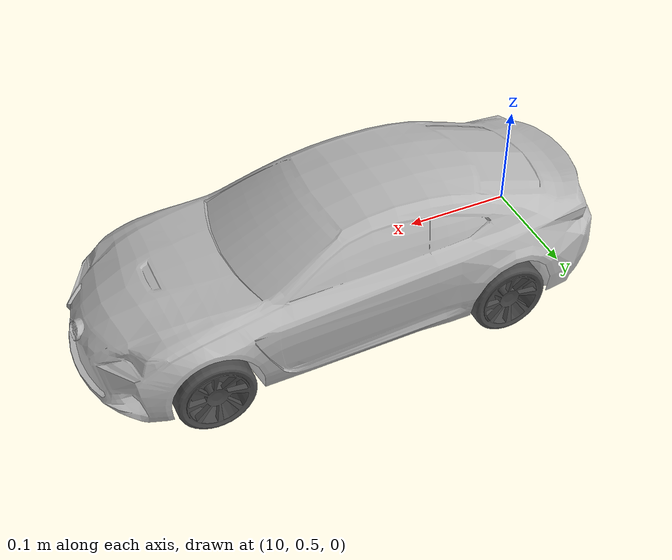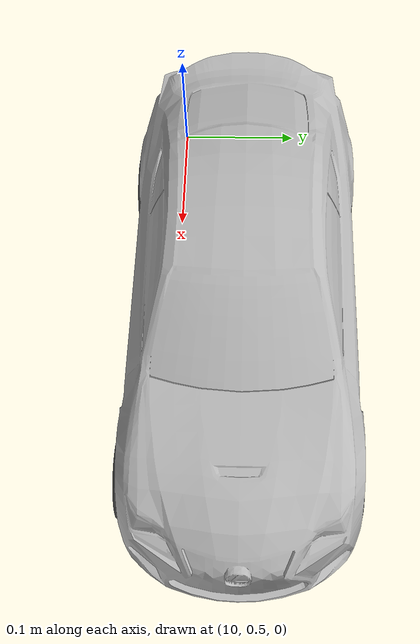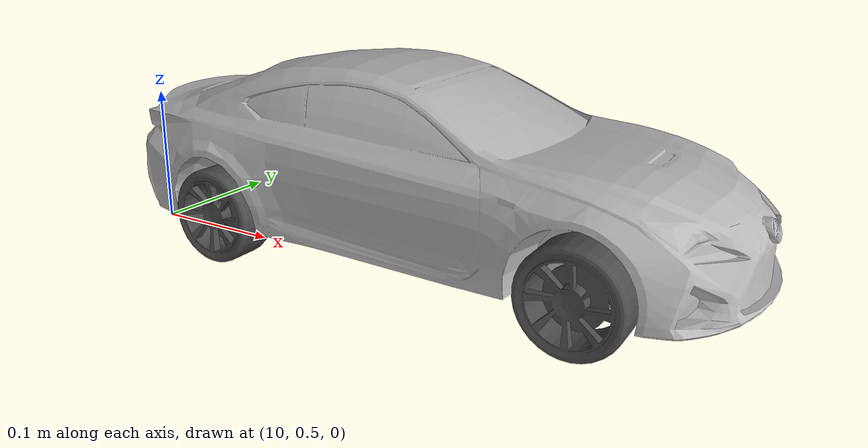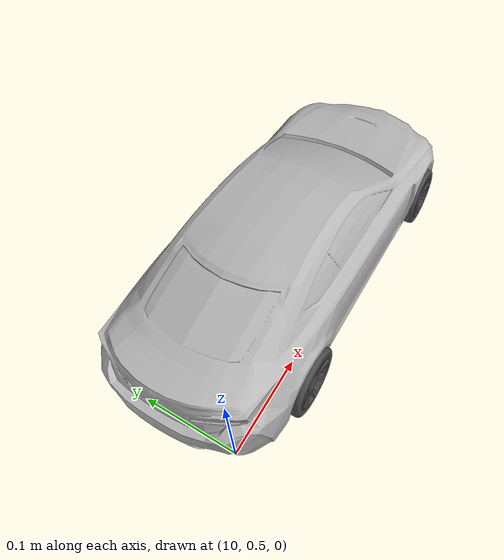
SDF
<sdf version="1.7">
 <world name="bfmc_official">
  <model name="automobile_obstacle_1">
   <static>1</static>
   <frame name="chassis::__model__" attached_to="chassis::link">
    <pose relative_to="__model__">0 0 0 0 -0 0</pose>
   </frame>
   <link name="chassis::link">
    <inertial>
     <mass>0.26244</mass>
     <inertia>
      <ixx>0.00283444</ixx>
      <ixy>0</ixy>
      <ixz>0</ixz>
      <iyy>0.00039867</iyy>
      <iyz>0</iyz>
      <izz>0.00323293</izz>
     </inertia>
    </inertial>
    <pose relative_to="chassis::__model__">0 0 0 0 -0 0</pose>
    <visual name="visual">
     <pose>0 0 -0.0065 0 -0 0</pose>
     <geometry><mesh><uri>model://chassis/meshes/chassisV5.dae</uri><scale>1 1 1</scale></mesh></geometry>
     <material>
      <lighting>1</lighting>
      <shader type="vertex"><normal_map>__default__</normal_map></shader>
      <ambient>0.6 0.6 0.6 1</ambient>
      <diffuse>0.85 0.85 0.85 1</diffuse>
      <specular>0.6 0.6 0.6 1</specular>
      <emissive>0 0 0 1</emissive>
     </material>
    </visual>
    <collision name="collision">
     <geometry><box><size>0.135 0.36 0.002</size></box></geometry>
     <surface>
      <friction>
       <ode><mu>1</mu><mu2>1</mu2><fdir1>0 0 0</fdir1><slip1>0</slip1><slip2>0</slip2></ode>
       <torsional>
        <coefficient>1</coefficient>
        <patch_radius>0</patch_radius>
        <surface_radius>0</surface_radius>
        <use_patch_radius>1</use_patch_radius>
        <ode><slip>0</slip></ode>
       </torsional>
      </friction>
      <bounce><restitution_coefficient>0</restitution_coefficient><threshold>1e+06</threshold></bounce>
      <contact>
       <collide_without_contact>0</collide_without_contact>
       <collide_without_contact_bitmask>1</collide_without_contact_bitmask>
       <collide_bitmask>1</collide_bitmask>
       <ode>
        <soft_cfm>0</soft_cfm>
        <soft_erp>0.2</soft_erp>
        <kp>1e+13</kp>
        <kd>1</kd>
        <max_vel>0.01</max_vel>
        <min_depth>0</min_depth>
       </ode>
       <bullet>
        <split_impulse>1</split_impulse>
        <split_impulse_penetration_threshold>-0.01</split_impulse_penetration_threshold>
        <soft_cfm>0</soft_cfm>
        <soft_erp>0.2</soft_erp>
        <kp>1e+13</kp>
        <kd>1</kd>
       </bullet>
      </contact>
     </surface>
    </collision>
   </link>
   <frame name="wheel_rear_left::__model__" attached_to="wheel_rear_left::link_rim">
    <pose relative_to="__model__">-0.152 0.081 0 0 -0 0</pose>
   </frame>
   <link name="wheel_rear_left::link_rim">
    <inertial>
     <mass>0.038</mass>
     <inertia>
      <ixx>1.283e-05</ixx>
      <ixy>0</ixy>
      <ixz>0</ixz>
      <iyy>1.283e-05</iyy>
      <iyz>0</iyz>
      <izz>2.069e-05</izz>
     </inertia>
    </inertial>
    <pose relative_to="wheel_rear_left::__model__">0 0 0 1.5708 -0 0</pose>
    <visual name="visual">
     <pose>0 0 0 -1.5708 0 0</pose>
     <geometry><mesh><uri>model://wheel_left/meshes/rim.dae</uri><scale>1 1 1</scale></mesh></geometry>
     <material>
      <lighting>1</lighting>
      <shader type="vertex"><normal_map>__default__</normal_map></shader>
      <ambient>0.2 0.2 0.2 1</ambient>
      <diffuse>0.3 0.3 0.3 1</diffuse>
      <specular>0.5 0.5 0.5 1</specular>
      <emissive>0 0 0 0</emissive>
     </material>
    </visual>
    <collision name="collision">
     <geometry><cylinder><radius>0.033</radius><length>0.028</length></cylinder></geometry>
     <surface>
      <friction>
       <ode><mu>0.7</mu><mu2>0.7</mu2><fdir1>0 0 0</fdir1><slip1>0</slip1><slip2>0</slip2></ode>
       <torsional>
        <coefficient>1</coefficient>
        <patch_radius>0</patch_radius>
        <surface_radius>0</surface_radius>
        <use_patch_radius>1</use_patch_radius>
        <ode><slip>0</slip></ode>
       </torsional>
      </friction>
      <bounce><restitution_coefficient>0</restitution_coefficient><threshold>1e+06</threshold></bounce>
      <contact>
       <collide_without_contact>0</collide_without_contact>
       <collide_without_contact_bitmask>1</collide_without_contact_bitmask>
       <collide_bitmask>1</collide_bitmask>
       <ode>
        <soft_cfm>0</soft_cfm>
        <soft_erp>0.2</soft_erp>
        <kp>1e+07</kp>
        <kd>1</kd>
        <max_vel>0.01</max_vel>
        <min_depth>0</min_depth>
       </ode>
       <bullet>
        <split_impulse>1</split_impulse>
        <split_impulse_penetration_threshold>-0.01</split_impulse_penetration_threshold>
        <soft_cfm>0</soft_cfm>
        <soft_erp>0.2</soft_erp>
        <kp>1e+07</kp>
        <kd>1</kd>
       </bullet>
      </contact>
     </surface>
    </collision>
   </link>
   <frame name="wheel_rear_right::__model__" attached_to="wheel_rear_right::link_rim">
    <pose relative_to="__model__">-0.152 -0.081 0 0 -0 0</pose>
   </frame>
   <link name="wheel_rear_right::link_rim">
    <inertial>
     <mass>0.038</mass>
     <inertia>
      <ixx>1.283e-05</ixx>
      <ixy>0</ixy>
      <ixz>0</ixz>
      <iyy>1.283e-05</iyy>
      <iyz>0</iyz>
      <izz>2.069e-05</izz>
     </inertia>
    </inertial>
    <pose relative_to="wheel_rear_right::__model__">0 0 0 1.5708 -0 0</pose>
    <visual name="visual">
     <pose>0 0 0 -1.5708 0 0</pose>
     <geometry><mesh><uri>model://wheel_right/meshes/rim.dae</uri><scale>1 1 1</scale></mesh></geometry>
     <material>
      <lighting>1</lighting>
      <shader type="vertex"><normal_map>__default__</normal_map></shader>
      <ambient>0.2 0.2 0.2 1</ambient>
      <diffuse>0.3 0.3 0.3 1</diffuse>
      <specular>0.5 0.5 0.5 1</specular>
      <emissive>0 0 0 0</emissive>
     </material>
    </visual>
    <collision name="collision">
     <geometry><cylinder><radius>0.033</radius><length>0.028</length></cylinder></geometry>
     <surface>
      <friction>
       <ode><mu>0.7</mu><mu2>0.7</mu2><fdir1>0 0 0</fdir1><slip1>0</slip1><slip2>0</slip2></ode>
       <torsional>
        <coefficient>1</coefficient>
        <patch_radius>0</patch_radius>
        <surface_radius>0</surface_radius>
        <use_patch_radius>1</use_patch_radius>
        <ode><slip>0</slip></ode>
       </torsional>
      </friction>
      <bounce><restitution_coefficient>0</restitution_coefficient><threshold>1e+06</threshold></bounce>
      <contact>
       <collide_without_contact>0</collide_without_contact>
       <collide_without_contact_bitmask>1</collide_without_contact_bitmask>
       <collide_bitmask>1</collide_bitmask>
       <ode>
        <soft_cfm>0</soft_cfm>
        <soft_erp>0.2</soft_erp>
        <kp>1e+07</kp>
        <kd>1</kd>
        <max_vel>0.01</max_vel>
        <min_depth>0</min_depth>
       </ode>
       <bullet>
        <split_impulse>1</split_impulse>
        <split_impulse_penetration_threshold>-0.01</split_impulse_penetration_threshold>
        <soft_cfm>0</soft_cfm>
        <soft_erp>0.2</soft_erp>
        <kp>1e+07</kp>
        <kd>1</kd>
       </bullet>
      </contact>
     </surface>
    </collision>
   </link>
   <frame name="steer_left::__model__" attached_to="steer_left::link_steer">
    <pose relative_to="__model__">0.112 0.0725 0 0 -0 0</pose>
   </frame>
   <link name="steer_left::link_steer">
    <inertial>
     <mass>0.001</mass>
     <inertia>
      <ixx>0.00014583</ixx>
      <ixy>0</ixy>
      <ixz>0</ixz>
      <iyy>0.00014583</iyy>
      <iyz>0</iyz>
      <izz>0.000125</izz>
     </inertia>
    </inertial>
    <pose relative_to="steer_left::__model__">0 0 0 1.5708 -0 0</pose>
    <visual name="visual">
     <geometry><cylinder><radius>0.001</radius><length>0.01</length></cylinder></geometry>
     <material>
      <lighting>1</lighting>
      <script><uri>file://media/materials/scripts/gazebo.material</uri><name>Gazebo/Grey</name></script>
      <shader type="vertex"><normal_map>__default__</normal_map></shader>
      <ambient>0.3 0.3 0.3 1</ambient>
      <diffuse>0.7 0.7 0.7 1</diffuse>
      <specular>0.01 0.01 0.01 1</specular>
      <emissive>0 0 0 1</emissive>
     </material>
    </visual>
    <collision name="collision">
     <geometry><cylinder><radius>0.001</radius><length>0.01</length></cylinder></geometry>
     <surface>
      <friction>
       <ode><mu>1</mu><mu2>1</mu2><fdir1>0 0 0</fdir1><slip1>0</slip1><slip2>0</slip2></ode>
       <torsional>
        <coefficient>1</coefficient>
        <patch_radius>0</patch_radius>
        <surface_radius>0</surface_radius>
        <use_patch_radius>1</use_patch_radius>
        <ode><slip>0</slip></ode>
       </torsional>
      </friction>
      <bounce><restitution_coefficient>0</restitution_coefficient><threshold>1e+06</threshold></bounce>
      <contact>
       <collide_without_contact>0</collide_without_contact>
       <collide_without_contact_bitmask>1</collide_without_contact_bitmask>
       <collide_bitmask>1</collide_bitmask>
       <ode>
        <soft_cfm>0</soft_cfm>
        <soft_erp>0.2</soft_erp>
        <kp>1e+13</kp>
        <kd>1</kd>
        <max_vel>0.01</max_vel>
        <min_depth>0</min_depth>
       </ode>
       <bullet>
        <split_impulse>1</split_impulse>
        <split_impulse_penetration_threshold>-0.01</split_impulse_penetration_threshold>
        <soft_cfm>0</soft_cfm>
        <soft_erp>0.2</soft_erp>
        <kp>1e+13</kp>
        <kd>1</kd>
       </bullet>
      </contact>
     </surface>
    </collision>
   </link>
   <frame name="steer_right::__model__" attached_to="steer_right::link_steer">
    <pose relative_to="__model__">0.112 -0.0725 0 0 -0 0</pose>
   </frame>
   <link name="steer_right::link_steer">
    <inertial>
     <mass>0.001</mass>
     <inertia>
      <ixx>0.00014583</ixx>
      <ixy>0</ixy>
      <ixz>0</ixz>
      <iyy>0.00014583</iyy>
      <iyz>0</iyz>
      <izz>0.000125</izz>
     </inertia>
    </inertial>
    <pose relative_to="steer_right::__model__">0 0 0 1.5708 -0 0</pose>
    <visual name="visual">
     <geometry><cylinder><radius>0.001</radius><length>0.01</length></cylinder></geometry>
     <material>
      <lighting>1</lighting>
      <script><uri>file://media/materials/scripts/gazebo.material</uri><name>Gazebo/Grey</name></script>
      <shader type="vertex"><normal_map>__default__</normal_map></shader>
      <ambient>0.3 0.3 0.3 1</ambient>
      <diffuse>0.7 0.7 0.7 1</diffuse>
      <specular>0.01 0.01 0.01 1</specular>
      <emissive>0 0 0 1</emissive>
     </material>
    </visual>
    <collision name="collision">
     <geometry><cylinder><radius>0.001</radius><length>0.01</length></cylinder></geometry>
     <surface>
      <friction>
       <ode><mu>1</mu><mu2>1</mu2><fdir1>0 0 0</fdir1><slip1>0</slip1><slip2>0</slip2></ode>
       <torsional>
        <coefficient>1</coefficient>
        <patch_radius>0</patch_radius>
        <surface_radius>0</surface_radius>
        <use_patch_radius>1</use_patch_radius>
        <ode><slip>0</slip></ode>
       </torsional>
      </friction>
      <bounce><restitution_coefficient>0</restitution_coefficient><threshold>1e+06</threshold></bounce>
      <contact>
       <collide_without_contact>0</collide_without_contact>
       <collide_without_contact_bitmask>1</collide_without_contact_bitmask>
       <collide_bitmask>1</collide_bitmask>
       <ode>
        <soft_cfm>0</soft_cfm>
        <soft_erp>0.2</soft_erp>
        <kp>1e+13</kp>
        <kd>1</kd>
        <max_vel>0.01</max_vel>
        <min_depth>0</min_depth>
       </ode>
       <bullet>
        <split_impulse>1</split_impulse>
        <split_impulse_penetration_threshold>-0.01</split_impulse_penetration_threshold>
        <soft_cfm>0</soft_cfm>
        <soft_erp>0.2</soft_erp>
        <kp>1e+13</kp>
        <kd>1</kd>
       </bullet>
      </contact>
     </surface>
    </collision>
   </link>
   <frame name="wheel_front_left::__model__" attached_to="wheel_front_left::link_rim">
    <pose relative_to="__model__">0.118 0.081 0 0 -0 0</pose>
   </frame>
   <link name="wheel_front_left::link_rim">
    <inertial>
     <mass>0.038</mass>
     <inertia>
      <ixx>1.283e-05</ixx>
      <ixy>0</ixy>
      <ixz>0</ixz>
      <iyy>1.283e-05</iyy>
      <iyz>0</iyz>
      <izz>2.069e-05</izz>
     </inertia>
    </inertial>
    <pose relative_to="wheel_front_left::__model__">0 0 0 1.5708 -0 0</pose>
    <visual name="visual">
     <pose>0 0 0 -1.5708 0 0</pose>
     <geometry><mesh><uri>model://wheel_left/meshes/rim.dae</uri><scale>1 1 1</scale></mesh></geometry>
     <material>
      <lighting>1</lighting>
      <shader type="vertex"><normal_map>__default__</normal_map></shader>
      <ambient>0.2 0.2 0.2 1</ambient>
      <diffuse>0.3 0.3 0.3 1</diffuse>
      <specular>0.5 0.5 0.5 1</specular>
      <emissive>0 0 0 0</emissive>
     </material>
    </visual>
    <collision name="collision">
     <geometry><cylinder><radius>0.033</radius><length>0.028</length></cylinder></geometry>
     <surface>
      <friction>
       <ode><mu>0.7</mu><mu2>0.7</mu2><fdir1>0 0 0</fdir1><slip1>0</slip1><slip2>0</slip2></ode>
       <torsional>
        <coefficient>1</coefficient>
        <patch_radius>0</patch_radius>
        <surface_radius>0</surface_radius>
        <use_patch_radius>1</use_patch_radius>
        <ode><slip>0</slip></ode>
       </torsional>
      </friction>
      <bounce><restitution_coefficient>0</restitution_coefficient><threshold>1e+06</threshold></bounce>
      <contact>
       <collide_without_contact>0</collide_without_contact>
       <collide_without_contact_bitmask>1</collide_without_contact_bitmask>
       <collide_bitmask>1</collide_bitmask>
       <ode>
        <soft_cfm>0</soft_cfm>
        <soft_erp>0.2</soft_erp>
        <kp>1e+07</kp>
        <kd>1</kd>
        <max_vel>0.01</max_vel>
        <min_depth>0</min_depth>
       </ode>
       <bullet>
        <split_impulse>1</split_impulse>
        <split_impulse_penetration_threshold>-0.01</split_impulse_penetration_threshold>
        <soft_cfm>0</soft_cfm>
        <soft_erp>0.2</soft_erp>
        <kp>1e+07</kp>
        <kd>1</kd>
       </bullet>
      </contact>
     </surface>
    </collision>
   </link>
   <frame name="wheel_front_right::__model__" attached_to="wheel_front_right::link_rim">
    <pose relative_to="__model__">0.118 -0.081 0 0 -0 0</pose>
   </frame>
   <link name="wheel_front_right::link_rim">
    <inertial>
     <mass>0.038</mass>
     <inertia>
      <ixx>1.283e-05</ixx>
      <ixy>0</ixy>
      <ixz>0</ixz>
      <iyy>1.283e-05</iyy>
      <iyz>0</iyz>
      <izz>2.069e-05</izz>
     </inertia>
    </inertial>
    <pose relative_to="wheel_front_right::__model__">0 0 0 1.5708 -0 0</pose>
    <visual name="visual">
     <pose>0 0 0 -1.5708 0 0</pose>
     <geometry><mesh><uri>model://wheel_right/meshes/rim.dae</uri><scale>1 1 1</scale></mesh></geometry>
     <material>
      <lighting>1</lighting>
      <shader type="vertex"><normal_map>__default__</normal_map></shader>
      <ambient>0.2 0.2 0.2 1</ambient>
      <diffuse>0.3 0.3 0.3 1</diffuse>
      <specular>0.5 0.5 0.5 1</specular>
      <emissive>0 0 0 0</emissive>
     </material>
    </visual>
    <collision name="collision">
     <geometry><cylinder><radius>0.033</radius><length>0.028</length></cylinder></geometry>
     <surface>
      <friction>
       <ode><mu>0.7</mu><mu2>0.7</mu2><fdir1>0 0 0</fdir1><slip1>0</slip1><slip2>0</slip2></ode>
       <torsional>
        <coefficient>1</coefficient>
        <patch_radius>0</patch_radius>
        <surface_radius>0</surface_radius>
        <use_patch_radius>1</use_patch_radius>
        <ode><slip>0</slip></ode>
       </torsional>
      </friction>
      <bounce><restitution_coefficient>0</restitution_coefficient><threshold>1e+06</threshold></bounce>
      <contact>
       <collide_without_contact>0</collide_without_contact>
       <collide_without_contact_bitmask>1</collide_without_contact_bitmask>
       <collide_bitmask>1</collide_bitmask>
       <ode>
        <soft_cfm>0</soft_cfm>
        <soft_erp>0.2</soft_erp>
        <kp>1e+07</kp>
        <kd>1</kd>
        <max_vel>0.01</max_vel>
        <min_depth>0</min_depth>
       </ode>
       <bullet>
        <split_impulse>1</split_impulse>
        <split_impulse_penetration_threshold>-0.01</split_impulse_penetration_threshold>
        <soft_cfm>0</soft_cfm>
        <soft_erp>0.2</soft_erp>
        <kp>1e+07</kp>
        <kd>1</kd>
       </bullet>
      </contact>
     </surface>
    </collision>
   </link>
   <frame name="car_body::__model__" attached_to="car_body::link">
    <pose relative_to="__model__">-0.024 0 -0.028 0 -0 0</pose>
   </frame>
   <link name="car_body::link">
    <inertial>
     <mass>1</mass>
     <inertia>
      <ixx>0.166667</ixx>
      <ixy>0</ixy>
      <ixz>0</ixz>
      <iyy>0.166667</iyy>
      <iyz>0</iyz>
      <izz>0.166667</izz>
     </inertia>
    </inertial>
    <pose relative_to="car_body::__model__">0 -0 0 0 -0 0</pose>
    <visual name="visual">
     <geometry><mesh><uri>model://car_body/meshes/CarBody.dae</uri><scale>1 1 1</scale></mesh></geometry>
     <material>
      <script>
       <uri>model://car_body/materials/scripts</uri>
       <uri>model://car_body/materials/textures</uri>
       <name>CarBody/Image</name>
      </script>
     </material>
    </visual>
   </link>
   <static>0</static>
   <joint name="joint_leftrear_rim" type="fixed">
    <parent>chassis::link</parent>
    <child>wheel_rear_left::link_rim</child>
   </joint>
   <joint name="joint_rightrear_rim" type="fixed">
    <parent>chassis::link</parent>
    <child>wheel_rear_right::link_rim</child>
   </joint>
   <joint name="joint_rightfront_rim" type="fixed">
    <parent>chassis::link</parent>
    <child>wheel_front_right::link_rim</child>
   </joint>
   <joint name="joint_leftfront_rim" type="fixed">
    <parent>chassis::link</parent>
    <child>wheel_front_left::link_rim</child>
   </joint>
   <joint name="joint_body" type="fixed"><parent>chassis::link</parent><child>car_body::link</child></joint>
   <pose>10.2341 0.558076 0.023619 0 -0 0</pose>
  </model>
 </world>
</sdf>
